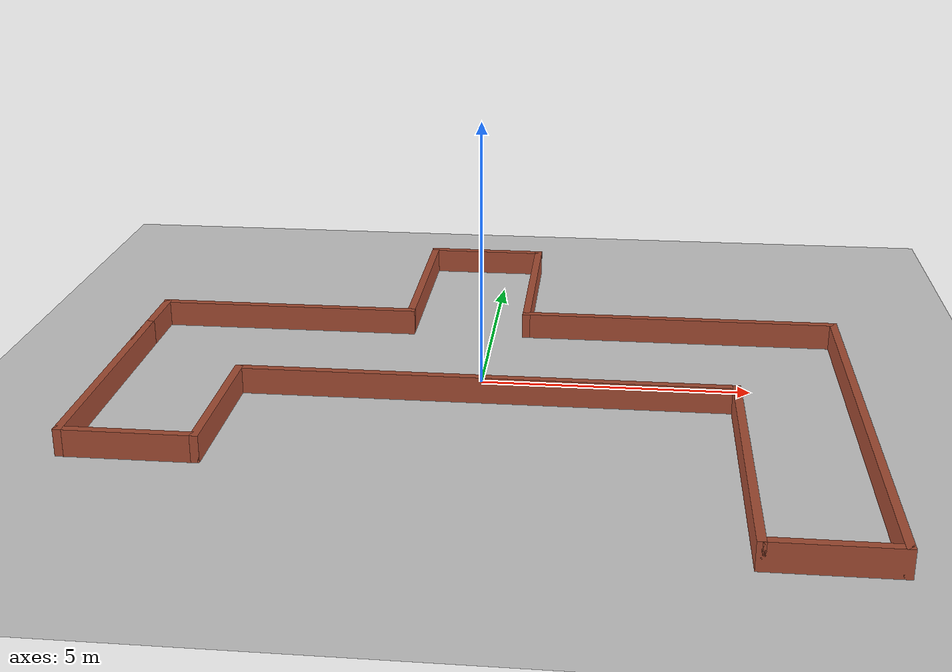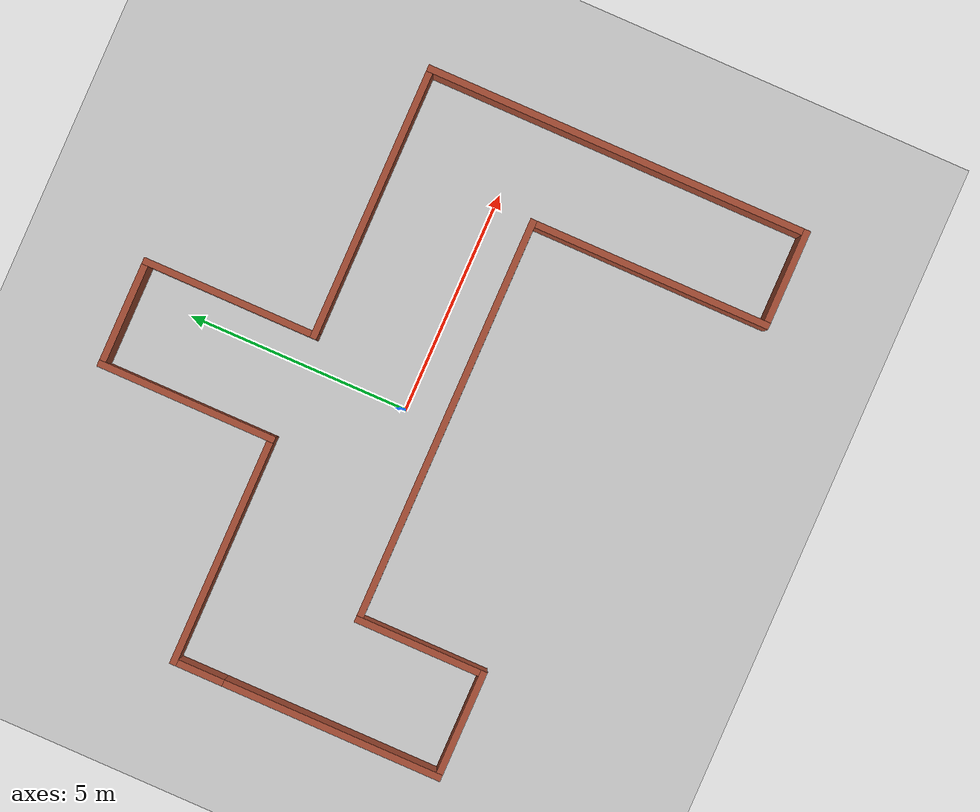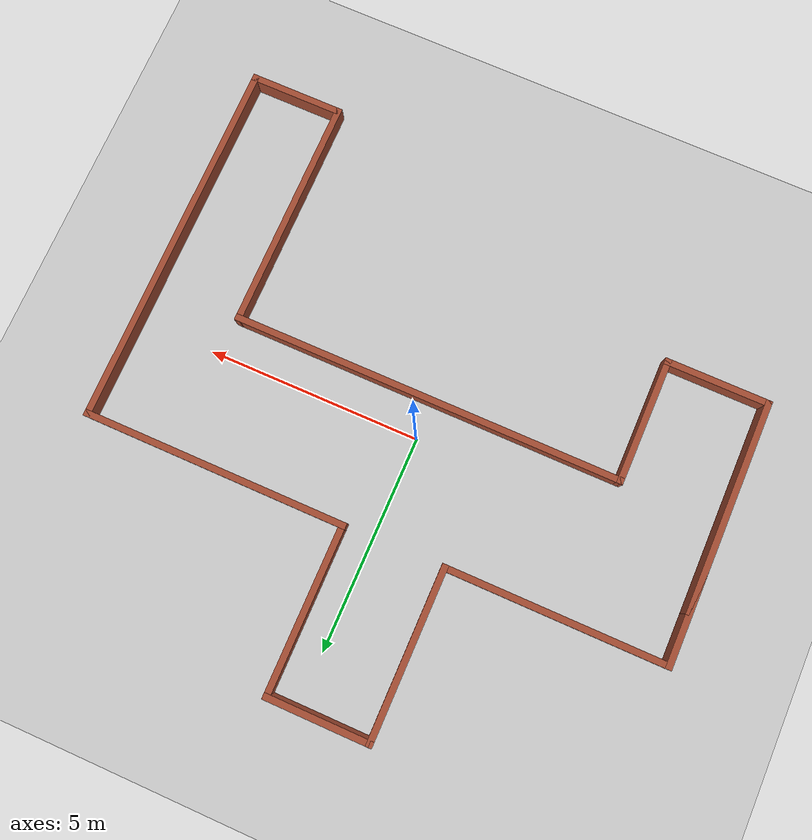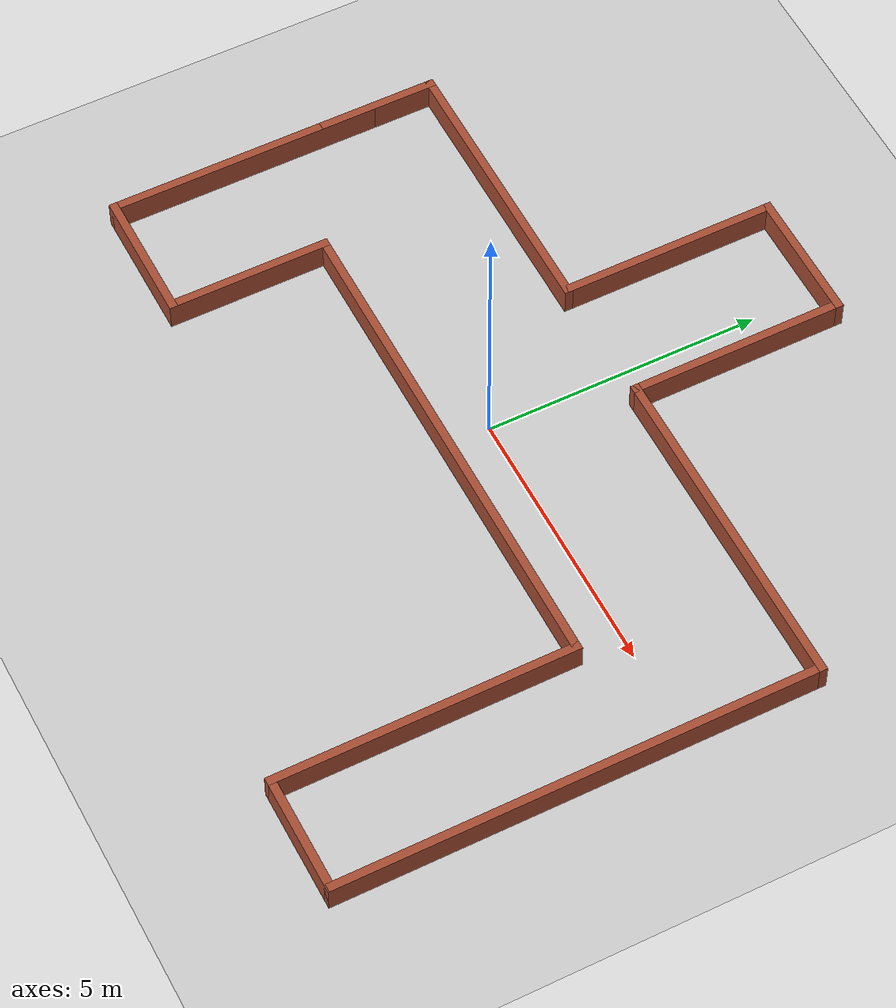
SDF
<sdf version="1.7">
 <world name="default">
  <light name="sun" type="directional">
   <pose>0 0 10 0 -0 0</pose>
   <diffuse>0.8 0.8 0.8 1</diffuse>
   <specular>0.2 0.2 0.2 1</specular>
   <attenuation>
    <range>1000</range>
    <constant>0.9</constant>
    <linear>0.01</linear>
    <quadratic>0.001</quadratic>
   </attenuation>
   <direction>-0.5 0.1 -0.9</direction>
   <spot><inner_angle>0</inner_angle><outer_angle>0</outer_angle><falloff>0</falloff></spot>
  </light>
  <model name="ground_plane">
   <static>1</static>
   <link name="link">
    <collision name="collision">
     <geometry><plane><normal>0 0 1</normal><size>100 100</size></plane></geometry>
     <surface>
      <contact><collide_bitmask>65535</collide_bitmask></contact>
      <friction><ode><mu>100</mu><mu2>50</mu2></ode></friction>
     </surface>
    </collision>
    <visual name="visual">
     <cast_shadows>0</cast_shadows>
     <geometry><plane><normal>0 0 1</normal><size>100 100</size></plane></geometry>
     <material>
      <script><uri>file://media/materials/scripts/gazebo.material</uri><name>Gazebo/Grey</name></script>
     </material>
    </visual>
   </link>
  </model>
  <gravity>0 0 -9.8</gravity>
  <magnetic_field>6e-06 2.3e-05 -4.2e-05</magnetic_field>
  <atmosphere type="adiabatic"/>
  <physics type="ode">
   <max_step_size>0.001</max_step_size>
   <real_time_factor>1</real_time_factor>
   <real_time_update_rate>1000</real_time_update_rate>
  </physics>
  <scene><ambient>0.4 0.4 0.4 1</ambient><background>0.7 0.7 0.7 1</background><shadows>1</shadows></scene>
  <spherical_coordinates>
   <surface_model>EARTH_WGS84</surface_model>
   <latitude_deg>0</latitude_deg>
   <longitude_deg>0</longitude_deg>
   <elevation>0</elevation>
   <heading_deg>0</heading_deg>
  </spherical_coordinates>
  <model name="hall">
   <link name="Wall_0">
    <collision name="Wall_0_Collision">
     <geometry><box><size>5 0.15 0.5</size></box></geometry>
     <pose>0 0 0.25 0 -0 0</pose>
    </collision>
    <visual name="Wall_0_Visual">
     <pose>0 0 0.25 0 -0 0</pose>
     <geometry><box><size>5 0.15 0.5</size></box></geometry>
     <material>
      <script><uri>file://media/materials/scripts/gazebo.material</uri><name>Gazebo/Bricks</name></script>
      <ambient>1 1 1 1</ambient>
     </material>
     <meta><layer>0</layer></meta>
    </visual>
    <pose>-6.775 -1.3 0 0 -0 -1.5708</pose>
   </link>
   <link name="Wall_1">
    <collision name="Wall_1_Collision">
     <geometry><box><size>2.5 0.15 0.5</size></box></geometry>
     <pose>0 0 0.25 0 -0 0</pose>
    </collision>
    <visual name="Wall_1_Visual">
     <pose>0 0 0.25 0 -0 0</pose>
     <geometry><box><size>2.5 0.15 0.5</size></box></geometry>
     <material>
      <script><uri>file://media/materials/scripts/gazebo.material</uri><name>Gazebo/Bricks</name></script>
      <ambient>1 1 1 1</ambient>
     </material>
     <meta><layer>0</layer></meta>
    </visual>
    <pose>-5.6 -3.725 0 0 -0 0</pose>
   </link>
   <link name="Wall_10">
    <collision name="Wall_10_Collision">
     <geometry><box><size>4.047 0.15 0.5</size></box></geometry>
     <pose>0 0 0.25 0 -0 0</pose>
    </collision>
    <visual name="Wall_10_Visual">
     <pose>0 0 0.25 0 -0 0</pose>
     <geometry><box><size>4.047 0.15 0.5</size></box></geometry>
     <material>
      <script><uri>file://media/materials/scripts/gazebo.material</uri><name>Gazebo/Bricks</name></script>
      <ambient>1 1 1 1</ambient>
     </material>
     <meta><layer>0</layer></meta>
    </visual>
    <pose>-1.675 4.2765 0 0 -0 -1.5708</pose>
   </link>
   <link name="Wall_11">
    <collision name="Wall_11_Collision">
     <geometry><box><size>5.25 0.15 0.5</size></box></geometry>
     <pose>0 0 0.25 0 -0 0</pose>
    </collision>
    <visual name="Wall_11_Visual">
     <pose>0 0 0.25 0 -0 0</pose>
     <geometry><box><size>5.25 0.15 0.5</size></box></geometry>
     <material>
      <script><uri>file://media/materials/scripts/gazebo.material</uri><name>Gazebo/Bricks</name></script>
      <ambient>1 1 1 1</ambient>
     </material>
     <meta><layer>0</layer></meta>
    </visual>
    <pose>-4.225 2.328 0 0 -0 3.14159</pose>
   </link>
   <link name="Wall_12">
    <collision name="Wall_12_Collision">
     <geometry><box><size>2.203 0.15 0.5</size></box></geometry>
     <pose>0 0 0.25 0 -0 0</pose>
    </collision>
    <visual name="Wall_12_Visual">
     <pose>0 0 0.25 0 -0 0</pose>
     <geometry><box><size>2.203 0.15 0.5</size></box></geometry>
     <material>
      <script><uri>file://media/materials/scripts/gazebo.material</uri><name>Gazebo/Bricks</name></script>
      <ambient>1 1 1 1</ambient>
     </material>
     <meta><layer>0</layer></meta>
    </visual>
    <pose>-6.775 1.3015 0 0 -0 -1.5708</pose>
   </link>
   <link name="Wall_2">
    <collision name="Wall_2_Collision">
     <geometry><box><size>3 0.15 0.5</size></box></geometry>
     <pose>0 0 0.25 0 -0 0</pose>
    </collision>
    <visual name="Wall_2_Visual">
     <pose>0 0 0.25 0 -0 0</pose>
     <geometry><box><size>3 0.15 0.5</size></box></geometry>
     <material>
      <script><uri>file://media/materials/scripts/gazebo.material</uri><name>Gazebo/Bricks</name></script>
      <ambient>1 1 1 1</ambient>
     </material>
     <meta><layer>0</layer></meta>
    </visual>
    <pose>-4.425 -2.3 0 0 -0 1.5708</pose>
   </link>
   <link name="Wall_3">
    <collision name="Wall_3_Collision">
     <geometry><box><size>9.25 0.15 0.5</size></box></geometry>
     <pose>0 0 0.25 0 -0 0</pose>
    </collision>
    <visual name="Wall_3_Visual">
     <pose>0 0 0.25 0 -0 0</pose>
     <geometry><box><size>9.25 0.15 0.5</size></box></geometry>
     <material>
      <script><uri>file://media/materials/scripts/gazebo.material</uri><name>Gazebo/Bricks</name></script>
      <ambient>1 1 1 1</ambient>
     </material>
     <meta><layer>0</layer></meta>
    </visual>
    <pose>0.125 -0.875 0 0 -0 0</pose>
   </link>
   <link name="Wall_4">
    <collision name="Wall_4_Collision">
     <geometry><box><size>5.5 0.15 0.5</size></box></geometry>
     <pose>0 0 0.25 0 -0 0</pose>
    </collision>
    <visual name="Wall_4_Visual">
     <pose>0 0 0.25 0 -0 0</pose>
     <geometry><box><size>5.5 0.15 0.5</size></box></geometry>
     <material>
      <script><uri>file://media/materials/scripts/gazebo.material</uri><name>Gazebo/Bricks</name></script>
      <ambient>1 1 1 1</ambient>
     </material>
     <meta><layer>0</layer></meta>
    </visual>
    <pose>4.675 -3.55 0 0 -0 -1.5708</pose>
   </link>
   <link name="Wall_5">
    <collision name="Wall_5_Collision">
     <geometry><box><size>2.25 0.15 0.5</size></box></geometry>
     <pose>0 0 0.25 0 -0 0</pose>
    </collision>
    <visual name="Wall_5_Visual">
     <pose>0 0 0.25 0 -0 0</pose>
     <geometry><box><size>2.25 0.15 0.5</size></box></geometry>
     <material>
      <script><uri>file://media/materials/scripts/gazebo.material</uri><name>Gazebo/Bricks</name></script>
      <ambient>1 1 1 1</ambient>
     </material>
     <meta><layer>0</layer></meta>
    </visual>
    <pose>5.725 -6.225 0 0 -0 0</pose>
   </link>
   <link name="Wall_6">
    <collision name="Wall_6_Collision">
     <geometry><box><size>8.75 0.15 0.5</size></box></geometry>
     <pose>0 0 0.25 0 -0 0</pose>
    </collision>
    <visual name="Wall_6_Visual">
     <pose>0 0 0.25 0 -0 0</pose>
     <geometry><box><size>8.75 0.15 0.5</size></box></geometry>
     <material>
      <script><uri>file://media/materials/scripts/gazebo.material</uri><name>Gazebo/Bricks</name></script>
      <ambient>1 1 1 1</ambient>
     </material>
     <meta><layer>0</layer></meta>
    </visual>
    <pose>6.775 -1.925 0 0 -0 1.5708</pose>
   </link>
   <link name="Wall_7">
    <collision name="Wall_7_Collision">
     <geometry><box><size>6.25 0.15 0.5</size></box></geometry>
     <pose>0 0 0.25 0 -0 0</pose>
    </collision>
    <visual name="Wall_7_Visual">
     <pose>0 0 0.25 0 -0 0</pose>
     <geometry><box><size>6.25 0.15 0.5</size></box></geometry>
     <material>
      <script><uri>file://media/materials/scripts/gazebo.material</uri><name>Gazebo/Bricks</name></script>
      <ambient>1 1 1 1</ambient>
     </material>
     <meta><layer>0</layer></meta>
    </visual>
    <pose>3.725 2.375 0 0 -0 3.14159</pose>
   </link>
   <link name="Wall_8">
    <collision name="Wall_8_Collision">
     <geometry><box><size>4 0.15 0.5</size></box></geometry>
     <pose>0 0 0.25 0 -0 0</pose>
    </collision>
    <visual name="Wall_8_Visual">
     <pose>0 0 0.25 0 -0 0</pose>
     <geometry><box><size>4 0.15 0.5</size></box></geometry>
     <material>
      <script><uri>file://media/materials/scripts/gazebo.material</uri><name>Gazebo/Bricks</name></script>
      <ambient>1 1 1 1</ambient>
     </material>
     <meta><layer>0</layer></meta>
    </visual>
    <pose>0.675 4.3 0 0 -0 1.5708</pose>
   </link>
   <link name="Wall_9">
    <collision name="Wall_9_Collision">
     <geometry><box><size>2.5 0.15 0.5</size></box></geometry>
     <pose>0 0 0.25 0 -0 0</pose>
    </collision>
    <visual name="Wall_9_Visual">
     <pose>0 0 0.25 0 -0 0</pose>
     <geometry><box><size>2.5 0.15 0.5</size></box></geometry>
     <material>
      <script><uri>file://media/materials/scripts/gazebo.material</uri><name>Gazebo/Bricks</name></script>
      <ambient>1 1 1 1</ambient>
     </material>
     <meta><layer>0</layer></meta>
    </visual>
    <pose>-0.5 6.225 0 0 -0 3.14159</pose>
   </link>
   <static>1</static>
  </model>
 </world>
</sdf>
